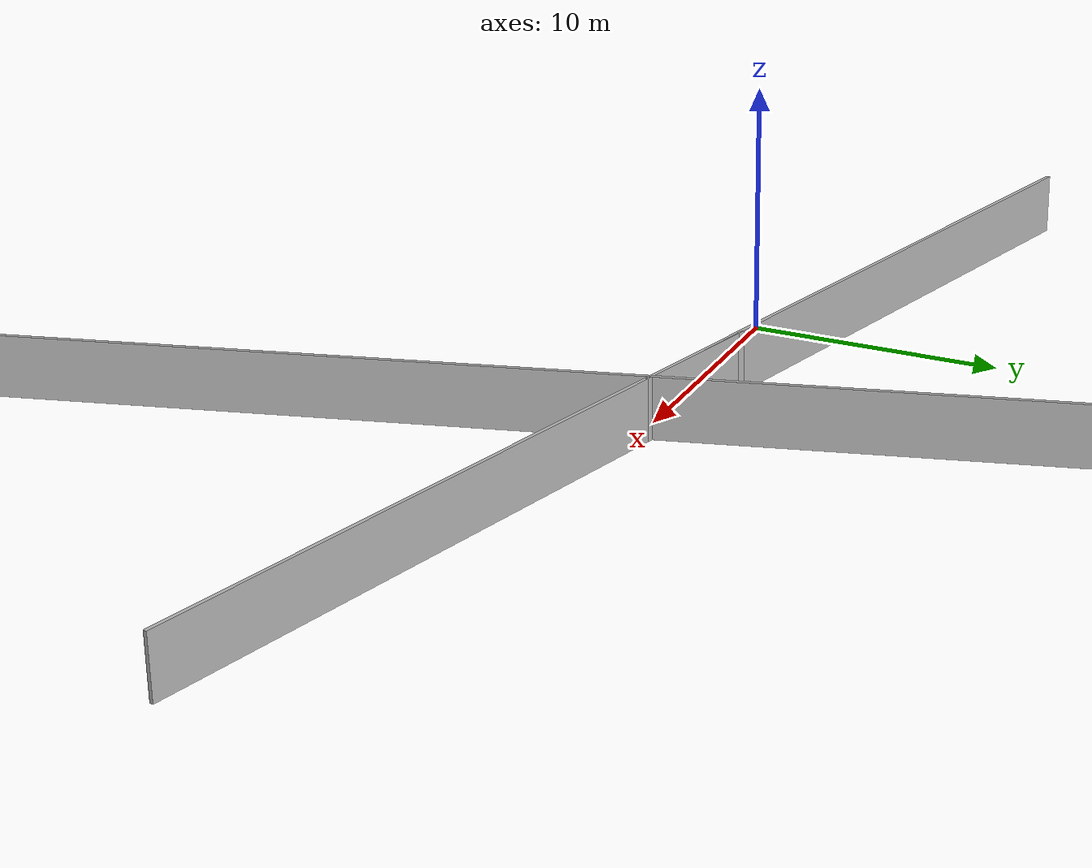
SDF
<?xml version="1.0" ?>
<sdf version="1.6">
  <model name="sps_0707">
    <pose frame="">0 0 0 0 -0 0</pose>
    <static>1</static>
    <self_collide>0</self_collide>
    <allow_auto_disable>0</allow_auto_disable>
    <link name="Wall5">
      <kinematic>0</kinematic>
      <gravity>1</gravity>
      <self_collide>0</self_collide>
      <collision name="collision">
        <geometry>
          <box>
            <size>51.584 0.15 2.5</size>
          </box>
        </geometry>
        <pose frame="">0 0 0 0 -0 0</pose>
      </collision>
      <visual name="visual">
        <geometry>
          <box>
            <size>51.584 0.15 2.5</size>
          </box>
        </geometry>
        <pose frame="">0 0 0 0 -0 0</pose>
        <cast_shadows>1</cast_shadows>
        <transparency>0.0</transparency>
      </visual>
      <pose frame="">9.46944 0.958681 1.25 0 0 -0.248456</pose>
    </link>
    <link name="Wall1858">
      <kinematic>0</kinematic>
      <gravity>1</gravity>
      <self_collide>0</self_collide>
      <collision name="collision">
        <geometry>
          <box>
            <size>484.289 0.15 2.5</size>
          </box>
        </geometry>
        <pose frame="">0 0 0 0 -0 0</pose>
      </collision>
      <visual name="visual">
        <geometry>
          <box>
            <size>484.289 0.15 2.5</size>
          </box>
        </geometry>
        <pose frame="">0 0 0 0 -0 0</pose>
        <cast_shadows>1</cast_shadows>
        <transparency>0.0</transparency>
      </visual>
      <pose frame="">4.49694 25.9777 1.25 0 0 -1.31037</pose>
    </link>
    <link name="Wall1897">
      <kinematic>0</kinematic>
      <gravity>1</gravity>
      <self_collide>0</self_collide>
      <collision name="collision">
        <geometry>
          <box>
            <size>0.34394 0.15 2.5</size>
          </box>
        </geometry>
        <pose frame="">0 0 0 0 -0 0</pose>
      </collision>
      <visual name="visual">
        <geometry>
          <box>
            <size>0.34394 0.15 2.5</size>
          </box>
        </geometry>
        <pose frame="">0 0 0 0 -0 0</pose>
        <cast_shadows>1</cast_shadows>
        <transparency>0.0</transparency>
      </visual>
      <pose frame="">6.12514 1.80739 1.25 0 0 -0.248508</pose>
    </link>
    <link name="Wall1898">
      <kinematic>0</kinematic>
      <gravity>1</gravity>
      <self_collide>0</self_collide>
      <collision name="collision">
        <geometry>
          <box>
            <size>5.15328 0.15 2.5</size>
          </box>
        </geometry>
        <pose frame="">0 0 0 0 -0 0</pose>
      </collision>
      <visual name="visual">
        <geometry>
          <box>
            <size>5.15328 0.15 2.5</size>
          </box>
        </geometry>
        <pose frame="">0 0 0 0 -0 0</pose>
        <cast_shadows>1</cast_shadows>
        <transparency>0.0</transparency>
      </visual>
      <pose frame="">8.78933 1.13139 1.25 0 0 -0.248489</pose>
    </link>
    <link name="Wall1899">
      <kinematic>0</kinematic>
      <gravity>1</gravity>
      <self_collide>0</self_collide>
      <collision name="collision">
        <geometry>
          <box>
            <size>0.279826 0.15 2.5</size>
          </box>
        </geometry>
        <pose frame="">0 0 0 0 -0 0</pose>
      </collision>
      <visual name="visual">
        <geometry>
          <box>
            <size>0.279826 0.15 2.5</size>
          </box>
        </geometry>
        <pose frame="">0 0 0 0 -0 0</pose>
        <cast_shadows>1</cast_shadows>
        <transparency>0.0</transparency>
      </visual>
      <pose frame="">11.4224 0.463302 1.25 0 0 -0.248364</pose>
    </link>
  </model>
</sdf>
